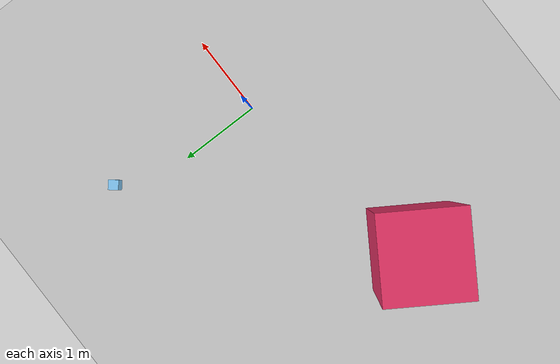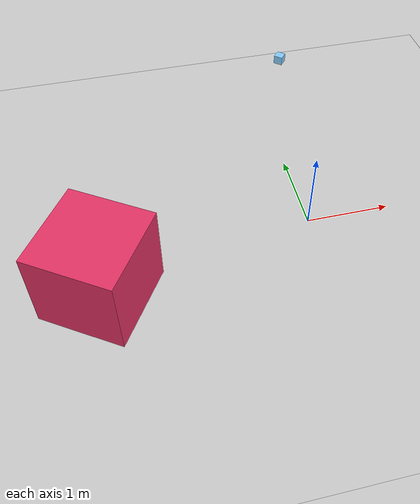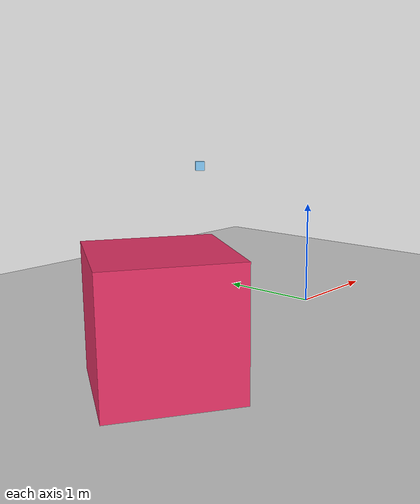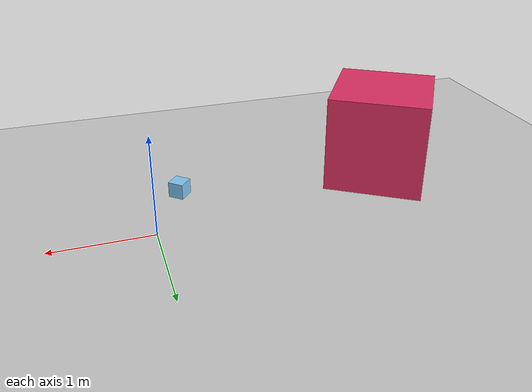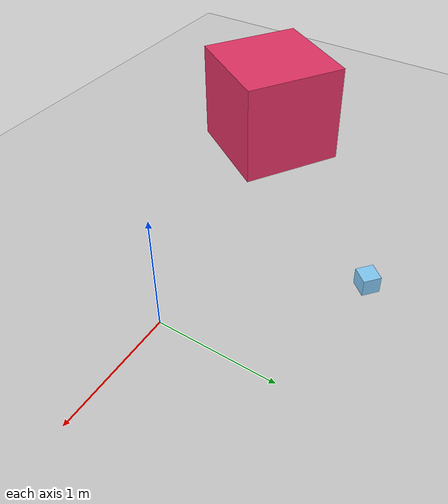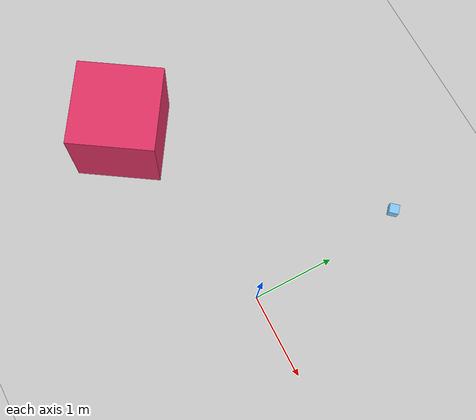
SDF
<?xml version="1.0" ?>
<sdf version="1.6">
    <world name="default">

        <include>
            <uri>model://sun</uri>
            <pose>-3 -3 10 0 0 0</pose>
        </include>

        <include>
            <uri>model://ground_plane</uri>
        </include>

        <include>
            <uri>model://car/car_camera</uri>
            <pose>0 1.5 1.3 0 0 4 </pose>
            <static>true</static>
        </include>

        <model name="sample_box">
            <pose>-2.5 -0.5 0.5 0 0 1</pose>
            <link name="link">
                <inertial>
                    <mass>1</mass>
                    <inertia>
                        <ixx>0.00166667</ixx>
                        <iyy>0.00166667</iyy>
                        <izz>0.00166667</izz>
                    </inertia>
                </inertial>
                <collision name="collision">
                    <geometry>
                        <box>
                            <size>1 1 1</size>
                        </box>
                    </geometry>
                </collision>
                <visual name="visual">
                    <material>
                        <diffuse> 0.9 0.2 0.4 1 </diffuse>
                        <specular> 0.2 0.2 0.2 0  </specular>
                        <emissive> 0 0 0 1 </emissive>
                        <ambient> 0.114 0.16 0.196 1 </ambient>
                    </material>
                    <geometry>
                        <box>
                            <size>1 1 1</size>
                        </box>
                    </geometry>
                </visual>
            </link>
        </model>

        <plugin filename="ignition-gazebo-sensors-system" name="ignition::gazebo::systems::Sensors">
            <render_engine>ogre</render_engine>
        </plugin>
        <plugin filename="ignition-gazebo-scene-broadcaster-system" name="ignition::gazebo::systems::SceneBroadcaster">
        </plugin>
        <plugin filename="ignition-gazebo-physics-system" name="ignition::gazebo::systems::Physics">
        </plugin>
        <plugin filename="ignition-gazebo-user-commands-system" name="ignition::gazebo::systems::UserCommands">
        </plugin>
    </world>
</sdf>

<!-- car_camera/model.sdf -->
<sdf version='1.7'>
    <model name='car_camera'>
        <link name='car_camera'>
            <inertial>
                <pose>0 0 0 0 -0 0</pose>
                <mass>0.1</mass>
                <inertia>
                    <ixx>0.000166667</ixx>
                    <ixy>0</ixy>
                    <ixz>0</ixz>
                    <iyy>0.000166667</iyy>
                    <iyz>0</iyz>
                    <izz>0.000166667</izz>
                </inertia>
            </inertial>
            <collision name='car_camera_collision'>
                <pose>0 0 0 0 -0 3.14</pose>
                <geometry>
                    <box>
                        <size>0.1 0.1 0.1</size>
                    </box>
                </geometry>
                <surface>
                    <contact>
                        <ode/>
                    </contact>
                    <friction>
                        <ode/>
                    </friction>
                </surface>
            </collision>
            <visual name='car_camera_visual'>
                <pose>0 0 0 0 -0 3.14</pose>
                <geometry>
                    <box>
                        <size>0.1 0.1 0.1</size>
                    </box>
                </geometry>
                <material>
                    <diffuse> 0.52 0.8 0.98 1 </diffuse>
                    <specular> 0.2 0.2 0.2 0  </specular>
                    <emissive> 0 0 0 1 </emissive>
                    <ambient> 0.114 0.16 0.196 1 </ambient>
                </material>
            </visual>
            <sensor name='car_camera' type='camera'>
                <update_rate>24</update_rate>
                <visualize>1</visualize>
                <topic>camera</topic>
                <camera name='head'>
                    <horizontal_fov>1.39626</horizontal_fov>
                    <image>
                        <width>640</width>
                        <height>480</height>
                        <format>R8G8B8</format>
                    </image>
                    <clip>
                        <near>0.02</near>
                        <far>300</far>
                    </clip>
                </camera>
            </sensor>
        </link>
    </model>
</sdf>
